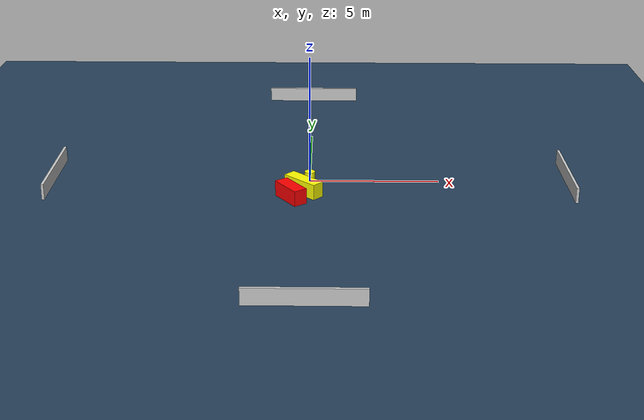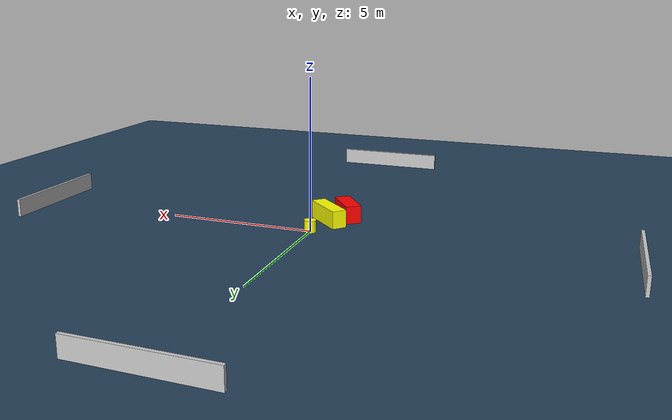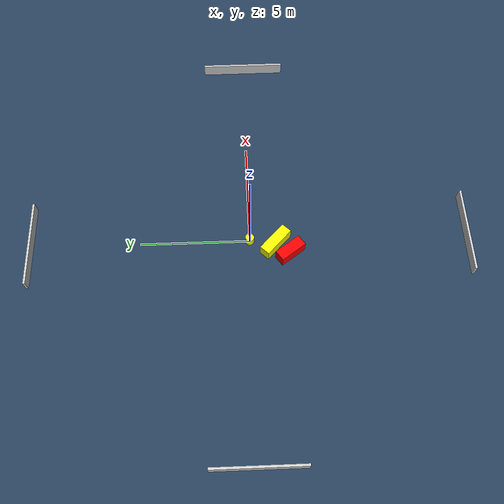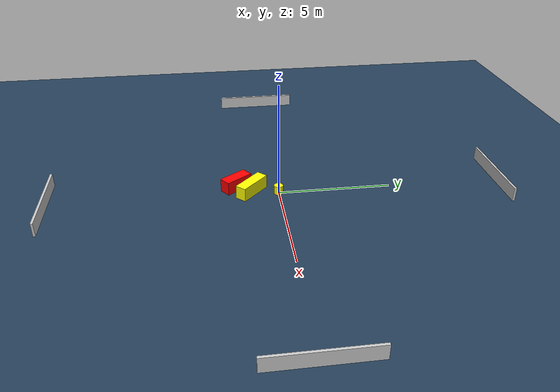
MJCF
<?xml version="1.0" ?>
<mujoco model="generated_environment">
  <option timestep="0.01" integrator="RK4" cone="elliptic"/>
  <default>
    <geom density="1"/>
  </default>
  <asset>
    <texture builtin="gradient" height="3072" name="skybox" rgb1="0.3 0.5 0.7" rgb2="0 0 0" type="skybox" width="512"/>
    <texture builtin="checker" height="300" name="groundplane" rgb1="0.2 0.3 0.4" rgb2="0.1 0.2 0.3" type="2d" width="300"/>
    <material name="groundplane" reflectance="0.2" texrepeat="5 5" texture="groundplane"/>
  </asset>
  <worldbody>
    <light dir="0 0 -1" directional="true" pos="0 0 1.5"/>
    <geom condim="3" friction="0.5 0.005 0.001" material="groundplane" name="floor" pos="0 0 0" size="0 0 0.05" type="plane"/>
    <body name="walls">
      <geom name="wall_1" condim="4" pos="-10.0 0.0 0.3" rgba="0.800000011920929 0.800000011920929 0.800000011920929 1.0" size="0.05 2.0 0.3" type="box"/>
      <geom name="wall_2" condim="4" pos="10.0 0.0 0.3" rgba="0.800000011920929 0.800000011920929 0.800000011920929 1.0" size="0.05 2.0 0.3" type="box"/>
      <geom name="wall_3" condim="4" pos="0.0 -10.0 0.3" rgba="0.800000011920929 0.800000011920929 0.800000011920929 1.0" size="2.0 0.05 0.3" type="box"/>
      <geom name="wall_4" condim="4" pos="0.0 10.0 0.3" rgba="0.800000011920929 0.800000011920929 0.800000011920929 1.0" size="2.0 0.05 0.3" type="box"/>
    </body>
    <body name="robot">
      <joint name="joint_x" type="slide" pos="0 0 0" axis="1 0 0"/>
      <joint name="joint_y" type="slide" pos="0 0 0" axis="0 1 0"/>
      <geom name="robot" type="cylinder" pos="0.0 0.0 0.2" size="0.2 0.2 0.0" mass="5.0" friction="1.0 0.005 0.0001" condim="4" rgba="1.0 1.0 0.0 1.0"/>
    </body>
    <body name="obstacle_1_movable">
      <geom name="obstacle_1_movable" condim="4" pos="-0.21936232808571268 -1.1719823030820744 0.3" euler="0 0 136.34482092501207" friction="0.0 0.005 0.001" rgba="1.0 1.0 0.0 1.0" size="0.7731434552759344 0.2505545080843484 0.3" type="box" mass="0.1"/>
      <joint type="free"/>
    </body>
    <body name="obstacle_2_static">
      <geom name="obstacle_2_static" condim="4" pos="-0.6877791040289322 -1.8251351814094325 0.3" euler="0 0 125.5111886702905" friction="0.0 0.005 0.001" rgba="1.0 0.0 0.0 1.0" size="0.6529903019625686 0.26611617020276734 0.3" type="box"/>
    </body>
  </worldbody>
  <actuator>
    <motor name="actuator_x" joint="joint_x" gear="1" ctrlrange="-1 1"/>
    <motor name="actuator_y" joint="joint_y" gear="1" ctrlrange="-1 1"/>
  </actuator>
</mujoco>
